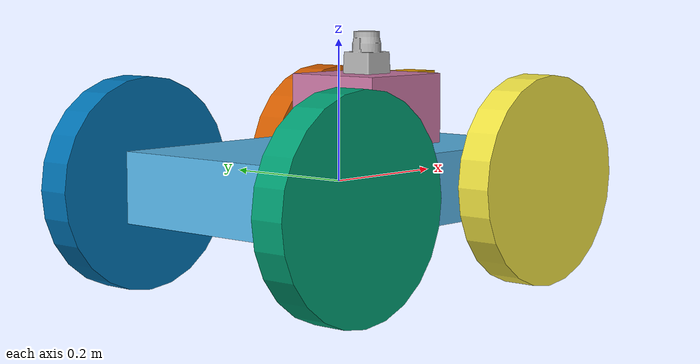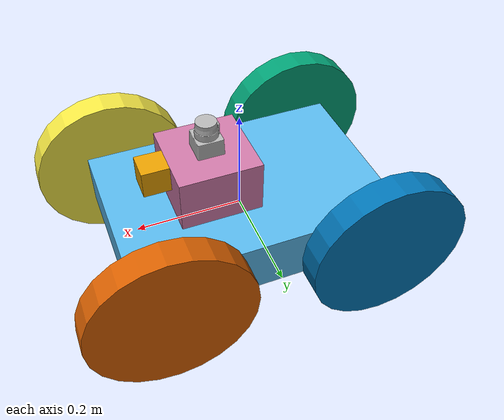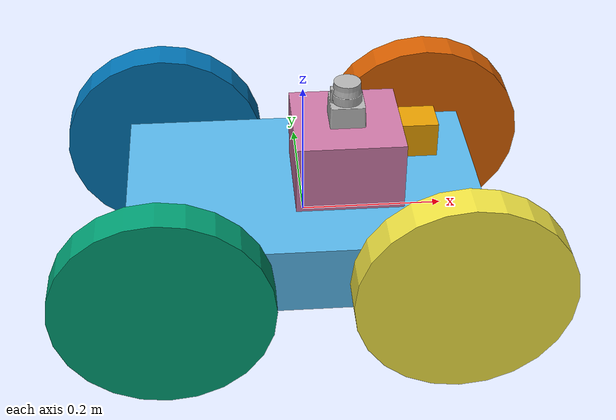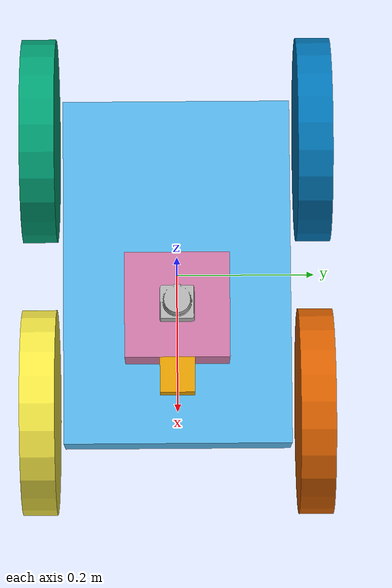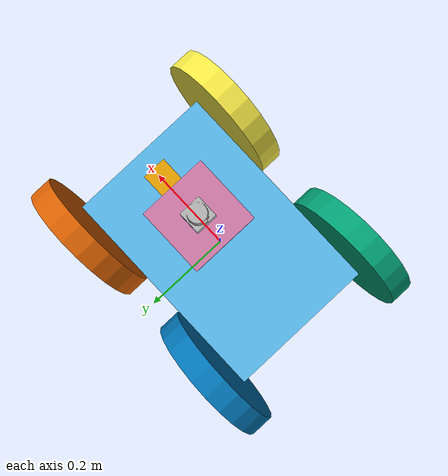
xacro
<?xml version='1.0'?>

<robot name="my_robot" xmlns:xacro="http://www.ros.org/wiki/xacro">
   <xacro:include filename="$(find my_robot)/urdf/my_robot.gazebo" />

  <link name="robot_footprint"></link>

  <joint name="robot_footprint_joint" type="fixed">
    <origin xyz="0 0 0" rpy="0 0 0" />
    <parent link="robot_footprint"/>
    <child link="chassis" />
  </joint>

  <link name='chassis'>
    <pose>0 0 0.1 0 0 0</pose>

    <inertial>
      <mass value="15.0"/>
      <origin xyz="0.0 0 0" rpy=" 0 0 0"/>
      <inertia
          ixx="0.1" ixy="0" ixz="0"
          iyy="0.1" iyz="0"
          izz="0.1"
      />
    </inertial>

    <collision name='collision'>
      <origin xyz="0 0 0" rpy=" 0 0 0"/>
      <geometry>
        <box size=".5 .33 .1"/>
      </geometry>
    </collision>

    <visual name='chassis_visual'>
      <origin xyz="0 0 0" rpy=" 0 0 0"/>
      <geometry>
        <box size=".5 .33 .1"/>
      </geometry>
    </visual>

  </link>

 <link name ='right_rear_wheel'>

	<pose>0 0 0 0 0 0</pose>

	    <inertial>
	      <mass value="5.0"/>
	      <origin xyz="0.0 0 0" rpy=" 0 1.5707 1.5707"/>
	      <inertia
		  ixx="0.1" ixy="0" ixz="0"
		  iyy="0.1" iyz="0"
		  izz="0.1"
	      />
	    </inertial>

	    <collision name='right_rear_collision'>
	      <origin xyz="0 0 0" rpy=" 0 1.5707 1.5707"/>
	      <geometry>
		<cylinder radius='.15' length='0.05'/>
	      </geometry>
	    </collision>

	    <visual name='right_rear_wheel_visual'>
	      <origin xyz="0 0 0" rpy=" 0 1.5707 1.5707"/>
	      <geometry>
		<cylinder radius='.15' length='0.05'/>
	      </geometry>
	    </visual>
</link>

<joint type="continuous" name="right_rear_wheel_hinge">
    <origin xyz="-0.2 -0.2 0" rpy="0 0 0"/>
    <child link="right_rear_wheel"/>
    <parent link="chassis"/>
    <axis xyz="0 1 0" rpy="0 0 0"/>
    <limit effort="10000" velocity="1000"/>
    <dynamics damping="1.0" friction="1.0"/>
  </joint>

<link name ='right_front_wheel'>

	<pose>0 0 0 0 0 0</pose>

	    <inertial>
	      <mass value="5.0"/>
	      <origin xyz="0.0 0 0" rpy=" 0 1.5707 1.5707"/>
	      <inertia
		  ixx="0.1" ixy="0" ixz="0"
		  iyy="0.1" iyz="0"
		  izz="0.1"
	      />
	    </inertial>

	    <collision name='right_front_collision'>
	      <origin xyz="0 0 0" rpy=" 0 1.5707 1.5707"/>
	      <geometry>
		<cylinder radius='.15' length='0.05'/>
	      </geometry>
	    </collision>

	    <visual name='right_front_wheel_visual'>
	      <origin xyz="0 0 0" rpy=" 0 1.5707 1.5707"/>
	      <geometry>
		<cylinder radius='.15' length='0.05'/>
	      </geometry>
	    </visual>
</link>

<joint type="continuous" name="right_front_wheel_hinge">
    <origin xyz="0.2 -0.2 0" rpy="0 0 0"/>
    <child link="right_front_wheel"/>
    <parent link="chassis"/>
    <axis xyz="0 1 0" rpy="0 0 0"/>
    <limit effort="10000" velocity="1000"/>
    <dynamics damping="1.0" friction="1.0"/>
  </joint>

<link name ='left_rear_wheel'>

	<pose>0 0 0 0 0 0</pose>

	    <inertial>
	      <mass value="5.0"/>
	      <origin xyz="0.0 0 0" rpy=" 0 1.5707 1.5707"/>
	      <inertia
		  ixx="0.1" ixy="0" ixz="0"
		  iyy="0.1" iyz="0"
		  izz="0.1"
	      />
	    </inertial>

	    <collision name='left_rear_collision'>
	      <origin xyz="0 0 0" rpy=" 0 1.5707 1.5707"/>
	      <geometry>
		<cylinder radius='.15' length='0.05'/>
	      </geometry>
	    </collision>

	    <visual name='left_rear_wheel_visual'>
	      <origin xyz="0 0 0" rpy=" 0 1.5707 1.5707"/>
	      <geometry>
		<cylinder radius='.15' length='0.05'/>
	      </geometry>
	    </visual>
</link>

<joint type="continuous" name="left_rear_wheel_hinge">
    <origin xyz="-0.2 0.2 0" rpy="0 0 0"/>
    <child link="left_rear_wheel"/>
    <parent link="chassis"/>
    <axis xyz="0 1 0" rpy="0 0 0"/>
    <limit effort="10000" velocity="1000"/>
    <dynamics damping="1.0" friction="1.0"/>
  </joint>

<link name ='left_front_wheel'>

	<pose>0 0 0 0 0 0</pose>

	    <inertial>
	      <mass value="5.0"/>
	      <origin xyz="0.0 0 0" rpy=" 0 1.5707 1.5707"/>
	      <inertia
		  ixx="0.1" ixy="0" ixz="0"
		  iyy="0.1" iyz="0"
		  izz="0.1"
	      />
	    </inertial>

	    <collision name='left_front_collision'>
	      <origin xyz="0 0 0" rpy=" 0 1.5707 1.5707"/>
	      <geometry>
		<cylinder radius='.15' length='0.05'/>
	      </geometry>
	    </collision>

	    <visual name='left_front_wheel_visual'>
	      <origin xyz="0 0 0" rpy=" 0 1.5707 1.5707"/>
	      <geometry>
		<cylinder radius='.15' length='0.05'/>
	      </geometry>
	    </visual>
</link>

<joint type="continuous" name="left_front_wheel_hinge">
    <origin xyz="0.2 0.2 0" rpy="0 0 0"/>
    <child link="left_front_wheel"/>
    <parent link="chassis"/>
    <axis xyz="0 1 0" rpy="0 0 0"/>
    <limit effort="10000" velocity="1000"/>
    <dynamics damping="1.0" friction="1.0"/>
  </joint>

<link name ='sensor_tower'>

	<pose>0 0 0 0 0 0</pose>

	    <inertial>
	      <mass value="5.0"/>
	      <origin xyz="0.0 0 0" rpy=" 0 0 0"/>
	      <inertia
		  ixx="0.1" ixy="0" ixz="0"
		  iyy="0.1" iyz="0"
		  izz="0.1"
	      />
	    </inertial>

	    <collision name='sensor_tower_collision'>
	      <origin xyz="0 0 0" rpy=" 0 0 0"/>
	      <geometry>
		<box size='.15 .15 .1'/>
	      </geometry>
	    </collision>

	    <visual name='sensor_tower_visual'>
	      <origin xyz="0 0 0" rpy=" 0 0 0"/>
	      <geometry>
		<box size='.15 .15 .1'/>
	      </geometry>
	    </visual>
</link>

<joint type="fixed" name="sensor_tower_joint">
    <origin xyz=".06 0 .1" rpy="0 0 0"/>
    <child link="sensor_tower"/>
    <parent link="chassis"/>
    <axis xyz="1 0 0" rpy="0 0 0"/>
    <limit effort="10000" velocity="1000"/>
    <dynamics damping="1.0" friction="1.0"/>
  </joint>

<link name='hokuyo'>
<pose>0 0 0 0 0 0</pose>

<inertial>
<mass value="1e-5"/>
<origin xyz="0.0 0 0" rpy=" 0 0 0"/>
<inertia
  ixx="1e-6" ixy="0" ixz="0"
  iyy="1e-6" iyz="0"
  izz="1e-6"
/>
</inertial>

<collision name='hokuyo_collision'>
<origin xyz="0 0 0" rpy=" 0 0 0"/>
<geometry>
<mesh filename="package://my_robot/meshes/hokuyo.dae"/>
</geometry>
</collision>

<visual name='hokuyo_visual'>
<origin xyz="0 0 0" rpy=" 0 0 0"/>
<geometry>
<mesh filename="package://my_robot/meshes/hokuyo.dae"/>
</geometry>
    </visual>
  </link>
  <joint type="fixed" name="hokuyo_joint">
    <origin xyz="0 0 .075" rpy="0 0 0"/>
    <child link="hokuyo"/>
    <parent link="sensor_tower"/>
    <axis xyz="1 0 0" rpy="0 0 0"/>
  </joint>

 <link name='camera'>
    <pose>0 0 0 0 0 0</pose>

    <inertial>
      <mass value=".10"/>
      <origin xyz="0.0 0 0" rpy=" 0 0 0"/>
      <inertia
          ixx="1e-6" ixy="0" ixz="0"
          iyy="1e-6" iyz="0"
          izz="1e-6"
      />
    </inertial>

    <collision name='camera_collision'>
      <origin xyz="0 0 0" rpy=" 0 0 0"/>
      <geometry>
        <box size=".05 .05 .05"/>
      </geometry>
    </collision>

    <visual name='camera_visual'>
      <origin xyz="0 0 0" rpy=" 0 0 0"/>
      <geometry>
        <box size=".05 .05 .05"/>
      </geometry>
    </visual>
     <box_inertia m="0.1" x="0.05" y="0.05" z="0.05"/>
  </link>
   <joint type="fixed" name="camera_joint">
    <origin xyz="0.1 0 .025" rpy="0 0 0"/>
    <child link="camera"/>
    <parent link="sensor_tower"/>
    <axis xyz="1 0 0" rpy="0 0 0"/>
  </joint>

</robot>
